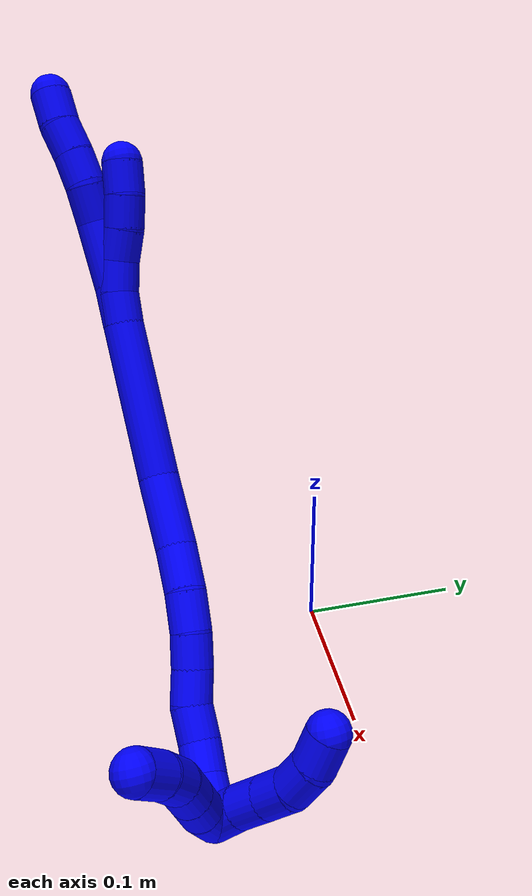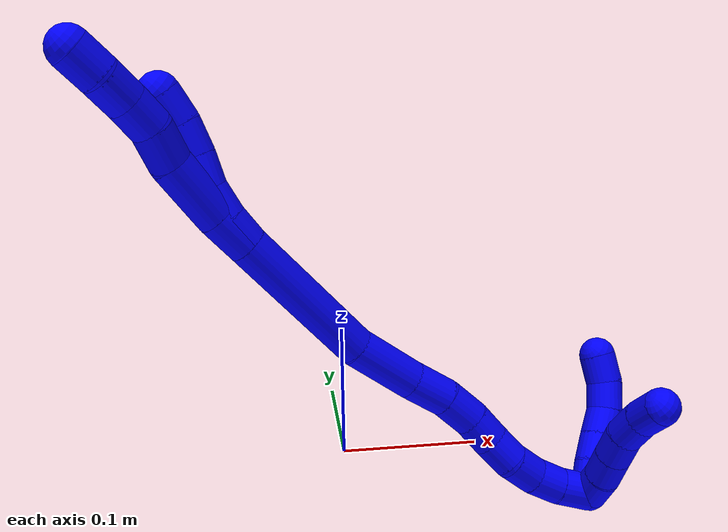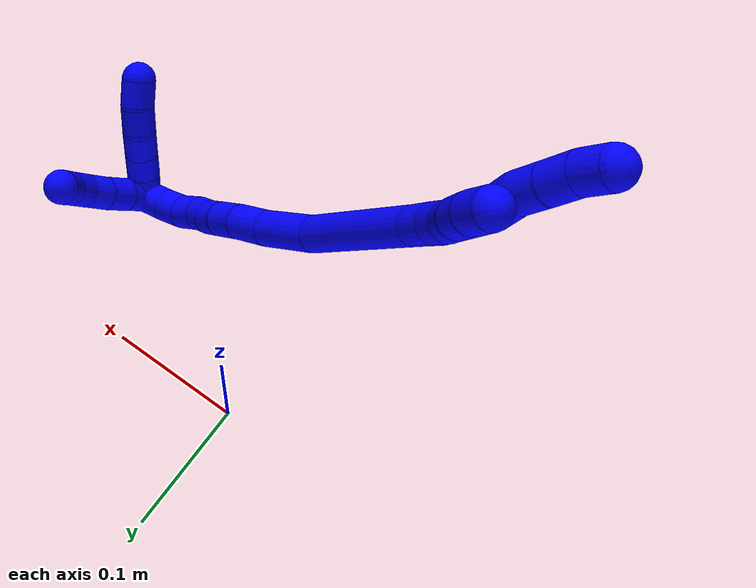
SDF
<sdf version="1.7">
 <world name="default">
  <plugin name="TubeGeneratorPlugin" filename="libtube_generator_plugin.so"/>
  <model name="photoneo_s_sensor">
   <static>1</static>
   <pose>0 0 2 1.57079 1.57079 3.14159</pose>
   <link name="link">
    <inertial><mass>0.1</mass></inertial>
    <sensor name="sensor" type="depth">
     <update_rate>30</update_rate>
     <camera>
      <horizontal_fov>1.22</horizontal_fov>
      <image><width>1920</width><height>1200</height><format>B8G8R8</format></image>
      <clip><near>0.1</near><far>4</far></clip>
      <depth_camera><output>points</output></depth_camera>
     </camera>
     <plugin name="camera_plugin" filename="libgazebo_ros_depth_camera.so">
      <baseline>0.2</baseline>
      <alwaysOn>1</alwaysOn>
      <updateRate>0.0</updateRate>
      <cameraName>camera_ir</cameraName>
      <imageTopicName>/camera/color/image_raw</imageTopicName>
      <cameraInfoTopicName>/camera/color/camera_info</cameraInfoTopicName>
      <depthImageTopicName>/camera/depth/image_raw</depthImageTopicName>
      <depthImageCameraInfoTopicName>/camera/depth/camera_info</depthImageCameraInfoTopicName>
      <pointCloudTopicName>/camera/depth/points</pointCloudTopicName>
      <frameName>fr_optical</frameName>
      <pointCloudCutoff>0.1</pointCloudCutoff>
      <pointCloudCutoffMax>2.0</pointCloudCutoffMax>
      <distortionK1>0</distortionK1>
      <distortionK2>0</distortionK2>
      <distortionK3>0</distortionK3>
      <distortionT1>0</distortionT1>
      <distortionT2>0</distortionT2>
      <CxPrime>0</CxPrime>
      <Cx>0</Cx>
      <Cy>0</Cy>
      <focalLength>0</focalLength>
      <hackBaseline>0</hackBaseline>
     </plugin>
    </sensor>
   </link>
  </model>
  <gravity>0 0 -9.8</gravity>
  <magnetic_field>6e-06 2.3e-05 -4.2e-05</magnetic_field>
  <atmosphere type="adiabatic"/>
  <physics name="default_physics" default="0" type="ode">
   <max_step_size>0.003</max_step_size>
   <real_time_factor>1</real_time_factor>
   <real_time_update_rate>1000</real_time_update_rate>
   <max_contacts>10000</max_contacts>
   <ode>
    <solver>
     <type>quick</type>
     <iters>100</iters>
     <sor>1.3</sor>
     <use_dynamic_moi_rescaling>0</use_dynamic_moi_rescaling>
    </solver>
    <constraints>
     <contact_max_correcting_vel>0</contact_max_correcting_vel>
     <contact_surface_layer>0.001</contact_surface_layer>
     <cfm>0</cfm>
     <erp>0.2</erp>
    </constraints>
   </ode>
  </physics>
  <scene><ambient>0.4 0.4 0.4 1</ambient><background>0.7 0.7 0.7 1</background><shadows>0</shadows></scene>
  <audio><device>default</device></audio>
  <spherical_coordinates>
   <surface_model>EARTH_WGS84</surface_model>
   <latitude_deg>0</latitude_deg>
   <longitude_deg>0</longitude_deg>
   <elevation>0</elevation>
   <heading_deg>0</heading_deg>
  </spherical_coordinates>
  <model name="bin">
   <static>1</static>
   <link name="bottom">
    <collision name="collision-bottom">
     <pose>0 0 -0.01 0 -0 0</pose>
     <geometry><box><size>0.8 0.6 0.02</size></box></geometry>
     <surface>
      <friction><ode><mu>100</mu><mu2>100</mu2></ode></friction>
      <contact><collide_bitmask>65535</collide_bitmask></contact>
     </surface>
    </collision>
   </link>
   <link name="west_wall">
    <collision name="collision-west_wall">
     <pose>-0.41 0 0.1 0 -0 0</pose>
     <geometry><box><size>0.02 0.6 0.2</size></box></geometry>
     <surface>
      <friction><ode><mu>100</mu><mu2>100</mu2></ode></friction>
      <contact><collide_bitmask>65535</collide_bitmask></contact>
     </surface>
    </collision>
   </link>
   <link name="east_wall">
    <collision name="collision-east_wall">
     <pose>0.41 0 0.1 0 -0 0</pose>
     <geometry><box><size>0.02 0.6 0.2</size></box></geometry>
     <surface>
      <friction><ode><mu>100</mu><mu2>100</mu2></ode></friction>
      <contact><collide_bitmask>65535</collide_bitmask></contact>
     </surface>
    </collision>
   </link>
   <link name="south_wall">
    <collision name="collision-south_wall">
     <pose>0 -0.31 0.1 0 -0 0</pose>
     <geometry><box><size>0.8 0.02 0.2</size></box></geometry>
     <surface>
      <friction><ode><mu>100</mu><mu2>100</mu2></ode></friction>
      <contact><collide_bitmask>65535</collide_bitmask></contact>
     </surface>
    </collision>
   </link>
   <link name="north_wall">
    <collision name="collision-north_wall">
     <pose>0 0.31 0.1 0 -0 0</pose>
     <geometry><box><size>0.8 0.02 0.2</size></box></geometry>
     <surface>
      <friction><ode><mu>100</mu><mu2>100</mu2></ode></friction>
      <contact><collide_bitmask>65535</collide_bitmask></contact>
     </surface>
    </collision>
   </link>
  </model>
  <model name="1">
   <static>0</static>
   <link name="1">
    <collision name="collision-cylinder-e_1_2_8">
     <pose>6.3e-05 6.7e-05 0.01241 -0.005424 0.005052 -1.4e-05</pose>
     <geometry><cylinder><radius>0.0125</radius><length>0.024821</length></cylinder></geometry>
     <surface>
      <friction><ode><mu>1.16</mu><mu2>1.16</mu2><slip1>0</slip1><slip2>0</slip2></ode></friction>
      <contact><ode><kp>1e+06</kp><kd>1</kd><max_vel>0</max_vel><min_depth>0.001</min_depth></ode></contact>
     </surface>
    </collision>
    <visual name="visual-cylinder-e_1_2_8">
     <pose>6.3e-05 6.7e-05 0.01241 -0.005424 0.005052 -1.4e-05</pose>
     <geometry><cylinder><radius>0.0125</radius><length>0.024821</length></cylinder></geometry>
     <material><ambient>0 0 1 1</ambient></material>
    </visual>
    <collision name="collision-cylinder-e_2_8_9">
     <pose>0.002994 -0.000309 0.04544 0.021503 0.138203 0.001488</pose>
     <geometry><cylinder><radius>0.0125</radius><length>0.041647</length></cylinder></geometry>
     <surface>
      <friction><ode><mu>1.16</mu><mu2>1.16</mu2><slip1>0</slip1><slip2>0</slip2></ode></friction>
      <contact><ode><kp>1e+06</kp><kd>1</kd><max_vel>0</max_vel><min_depth>0.001</min_depth></ode></contact>
     </surface>
    </collision>
    <visual name="visual-cylinder-e_2_8_9">
     <pose>0.002994 -0.000309 0.04544 0.021503 0.138203 0.001488</pose>
     <geometry><cylinder><radius>0.0125</radius><length>0.041647</length></cylinder></geometry>
     <material><ambient>0 0 1 1</ambient></material>
    </visual>
    <collision name="collision-cylinder-e_3_9_10">
     <pose>0.009972 -0.00055 0.076886 -0.018659 0.362683 -0.003421</pose>
     <geometry><cylinder><radius>0.0125</radius><length>0.023162</length></cylinder></geometry>
     <surface>
      <friction><ode><mu>1.16</mu><mu2>1.16</mu2><slip1>0</slip1><slip2>0</slip2></ode></friction>
      <contact><ode><kp>1e+06</kp><kd>1</kd><max_vel>0</max_vel><min_depth>0.001</min_depth></ode></contact>
     </surface>
    </collision>
    <visual name="visual-cylinder-e_3_9_10">
     <pose>0.009972 -0.00055 0.076886 -0.018659 0.362683 -0.003421</pose>
     <geometry><cylinder><radius>0.0125</radius><length>0.023162</length></cylinder></geometry>
     <material><ambient>0 0 1 1</ambient></material>
    </visual>
    <collision name="collision-cylinder-e_4_10_11">
     <pose>0.01548 -0.001464 0.097565 0.112745 0.140248 0.007927</pose>
     <geometry><cylinder><radius>0.0125</radius><length>0.020028</length></cylinder></geometry>
     <surface>
      <friction><ode><mu>1.16</mu><mu2>1.16</mu2><slip1>0</slip1><slip2>0</slip2></ode></friction>
      <contact><ode><kp>1e+06</kp><kd>1</kd><max_vel>0</max_vel><min_depth>0.001</min_depth></ode></contact>
     </surface>
    </collision>
    <visual name="visual-cylinder-e_4_10_11">
     <pose>0.01548 -0.001464 0.097565 0.112745 0.140248 0.007927</pose>
     <geometry><cylinder><radius>0.0125</radius><length>0.020028</length></cylinder></geometry>
     <material><ambient>0 0 1 1</ambient></material>
    </visual>
    <collision name="collision-cylinder-e_5_11_12">
     <pose>0.018241 -0.004465 0.117157 0.191242 0.136373 0.0131</pose>
     <geometry><cylinder><radius>0.0125</radius><length>0.020026</length></cylinder></geometry>
     <surface>
      <friction><ode><mu>1.16</mu><mu2>1.16</mu2><slip1>0</slip1><slip2>0</slip2></ode></friction>
      <contact><ode><kp>1e+06</kp><kd>1</kd><max_vel>0</max_vel><min_depth>0.001</min_depth></ode></contact>
     </surface>
    </collision>
    <visual name="visual-cylinder-e_5_11_12">
     <pose>0.018241 -0.004465 0.117157 0.191242 0.136373 0.0131</pose>
     <geometry><cylinder><radius>0.0125</radius><length>0.020026</length></cylinder></geometry>
     <material><ambient>0 0 1 1</ambient></material>
    </visual>
    <collision name="collision-cylinder-e_6_12_6">
     <pose>0.019813 -0.00694 0.137035 0.058054 0.020728 0.000602</pose>
     <geometry><cylinder><radius>0.0125</radius><length>0.020316</length></cylinder></geometry>
     <surface>
      <friction><ode><mu>1.16</mu><mu2>1.16</mu2><slip1>0</slip1><slip2>0</slip2></ode></friction>
      <contact><ode><kp>1e+06</kp><kd>1</kd><max_vel>0</max_vel><min_depth>0.001</min_depth></ode></contact>
     </surface>
    </collision>
    <visual name="visual-cylinder-e_6_12_6">
     <pose>0.019813 -0.00694 0.137035 0.058054 0.020728 0.000602</pose>
     <geometry><cylinder><radius>0.0125</radius><length>0.020316</length></cylinder></geometry>
     <material><ambient>0 0 1 1</ambient></material>
    </visual>
    <collision name="collision-cylinder-e_1_2_13">
     <pose>0.000754 0.00087 0.009934 -0.087345 0.075431 -0.003298</pose>
     <geometry><cylinder><radius>0.0125</radius><length>0.02</length></cylinder></geometry>
     <surface>
      <friction><ode><mu>1.16</mu><mu2>1.16</mu2><slip1>0</slip1><slip2>0</slip2></ode></friction>
      <contact><ode><kp>1e+06</kp><kd>1</kd><max_vel>0</max_vel><min_depth>0.001</min_depth></ode></contact>
     </surface>
    </collision>
    <visual name="visual-cylinder-e_1_2_13">
     <pose>0.000754 0.00087 0.009934 -0.087345 0.075431 -0.003298</pose>
     <geometry><cylinder><radius>0.0125</radius><length>0.02</length></cylinder></geometry>
     <material><ambient>0 0 1 1</ambient></material>
    </visual>
    <collision name="collision-cylinder-e_2_13_14">
     <pose>0.00269 0.004513 0.029402 -0.283093 0.118574 -0.016916</pose>
     <geometry><cylinder><radius>0.0125</radius><length>0.02</length></cylinder></geometry>
     <surface>
      <friction><ode><mu>1.16</mu><mu2>1.16</mu2><slip1>0</slip1><slip2>0</slip2></ode></friction>
      <contact><ode><kp>1e+06</kp><kd>1</kd><max_vel>0</max_vel><min_depth>0.001</min_depth></ode></contact>
     </surface>
    </collision>
    <visual name="visual-cylinder-e_2_13_14">
     <pose>0.00269 0.004513 0.029402 -0.283093 0.118574 -0.016916</pose>
     <geometry><cylinder><radius>0.0125</radius><length>0.02</length></cylinder></geometry>
     <material><ambient>0 0 1 1</ambient></material>
    </visual>
    <collision name="collision-cylinder-e_3_14_15">
     <pose>0.006567 0.011678 0.047507 -0.473422 0.272801 -0.066196</pose>
     <geometry><cylinder><radius>0.0125</radius><length>0.02</length></cylinder></geometry>
     <surface>
      <friction><ode><mu>1.16</mu><mu2>1.16</mu2><slip1>0</slip1><slip2>0</slip2></ode></friction>
      <contact><ode><kp>1e+06</kp><kd>1</kd><max_vel>0</max_vel><min_depth>0.001</min_depth></ode></contact>
     </surface>
    </collision>
    <visual name="visual-cylinder-e_3_14_15">
     <pose>0.006567 0.011678 0.047507 -0.473422 0.272801 -0.066196</pose>
     <geometry><cylinder><radius>0.0125</radius><length>0.02</length></cylinder></geometry>
     <material><ambient>0 0 1 1</ambient></material>
    </visual>
    <collision name="collision-cylinder-e_4_15_16">
     <pose>0.011709 0.019261 0.065234 -0.33548 0.247274 -0.04208</pose>
     <geometry><cylinder><radius>0.0125</radius><length>0.02</length></cylinder></geometry>
     <surface>
      <friction><ode><mu>1.16</mu><mu2>1.16</mu2><slip1>0</slip1><slip2>0</slip2></ode></friction>
      <contact><ode><kp>1e+06</kp><kd>1</kd><max_vel>0</max_vel><min_depth>0.001</min_depth></ode></contact>
     </surface>
    </collision>
    <visual name="visual-cylinder-e_4_15_16">
     <pose>0.011709 0.019261 0.065234 -0.33548 0.247274 -0.04208</pose>
     <geometry><cylinder><radius>0.0125</radius><length>0.02</length></cylinder></geometry>
     <material><ambient>0 0 1 1</ambient></material>
    </visual>
    <collision name="collision-cylinder-e_5_16_5">
     <pose>0.015632 0.024295 0.084106 -0.1874 0.148033 -0.013937</pose>
     <geometry><cylinder><radius>0.0125</radius><length>0.02</length></cylinder></geometry>
     <surface>
      <friction><ode><mu>1.16</mu><mu2>1.16</mu2><slip1>0</slip1><slip2>0</slip2></ode></friction>
      <contact><ode><kp>1e+06</kp><kd>1</kd><max_vel>0</max_vel><min_depth>0.001</min_depth></ode></contact>
     </surface>
    </collision>
    <visual name="visual-cylinder-e_5_16_5">
     <pose>0.015632 0.024295 0.084106 -0.1874 0.148033 -0.013937</pose>
     <geometry><cylinder><radius>0.0125</radius><length>0.02</length></cylinder></geometry>
     <material><ambient>0 0 1 1</ambient></material>
    </visual>
    <collision name="collision-cylinder-e_1_2_17">
     <pose>-0.000619 3e-05 -0.04869 -3.14098 -0.012716 3.04534</pose>
     <geometry><cylinder><radius>0.0125</radius><length>0.097389</length></cylinder></geometry>
     <surface>
      <friction><ode><mu>1.16</mu><mu2>1.16</mu2><slip1>0</slip1><slip2>0</slip2></ode></friction>
      <contact><ode><kp>1e+06</kp><kd>1</kd><max_vel>0</max_vel><min_depth>0.001</min_depth></ode></contact>
     </surface>
    </collision>
    <visual name="visual-cylinder-e_1_2_17">
     <pose>-0.000619 3e-05 -0.04869 -3.14098 -0.012716 3.04534</pose>
     <geometry><cylinder><radius>0.0125</radius><length>0.097389</length></cylinder></geometry>
     <material><ambient>0 0 1 1</ambient></material>
    </visual>
    <collision name="collision-cylinder-e_2_17_18">
     <pose>0.002619 0.001628 -0.119506 -3.07081 0.172198 -2.36299</pose>
     <geometry><cylinder><radius>0.0125</radius><length>0.045028</length></cylinder></geometry>
     <surface>
      <friction><ode><mu>1.16</mu><mu2>1.16</mu2><slip1>0</slip1><slip2>0</slip2></ode></friction>
      <contact><ode><kp>1e+06</kp><kd>1</kd><max_vel>0</max_vel><min_depth>0.001</min_depth></ode></contact>
     </surface>
    </collision>
    <visual name="visual-cylinder-e_2_17_18">
     <pose>0.002619 0.001628 -0.119506 -3.07081 0.172198 -2.36299</pose>
     <geometry><cylinder><radius>0.0125</radius><length>0.045028</length></cylinder></geometry>
     <material><ambient>0 0 1 1</ambient></material>
    </visual>
    <collision name="collision-cylinder-e_3_18_19">
     <pose>0.009917 0.003899 -0.154827 -3.08846 0.254643 -2.73228</pose>
     <geometry><cylinder><radius>0.0125</radius><length>0.027309</length></cylinder></geometry>
     <surface>
      <friction><ode><mu>1.16</mu><mu2>1.16</mu2><slip1>0</slip1><slip2>0</slip2></ode></friction>
      <contact><ode><kp>1e+06</kp><kd>1</kd><max_vel>0</max_vel><min_depth>0.001</min_depth></ode></contact>
     </surface>
    </collision>
    <visual name="visual-cylinder-e_3_18_19">
     <pose>0.009917 0.003899 -0.154827 -3.08846 0.254643 -2.73228</pose>
     <geometry><cylinder><radius>0.0125</radius><length>0.027309</length></cylinder></geometry>
     <material><ambient>0 0 1 1</ambient></material>
    </visual>
    <collision name="collision-cylinder-e_4_19_20">
     <pose>0.014765 0.003935 -0.179892 3.08557 0.118 2.25572</pose>
     <geometry><cylinder><radius>0.0125</radius><length>0.023942</length></cylinder></geometry>
     <surface>
      <friction><ode><mu>1.16</mu><mu2>1.16</mu2><slip1>0</slip1><slip2>0</slip2></ode></friction>
      <contact><ode><kp>1e+06</kp><kd>1</kd><max_vel>0</max_vel><min_depth>0.001</min_depth></ode></contact>
     </surface>
    </collision>
    <visual name="visual-cylinder-e_4_19_20">
     <pose>0.014765 0.003935 -0.179892 3.08557 0.118 2.25572</pose>
     <geometry><cylinder><radius>0.0125</radius><length>0.023942</length></cylinder></geometry>
     <material><ambient>0 0 1 1</ambient></material>
    </visual>
    <collision name="collision-cylinder-e_5_20_21">
     <pose>0.016476 0.001398 -0.201871 2.95855 0.029272 0.316306</pose>
     <geometry><cylinder><radius>0.0125</radius><length>0.020572</length></cylinder></geometry>
     <surface>
      <friction><ode><mu>1.16</mu><mu2>1.16</mu2><slip1>0</slip1><slip2>0</slip2></ode></friction>
      <contact><ode><kp>1e+06</kp><kd>1</kd><max_vel>0</max_vel><min_depth>0.001</min_depth></ode></contact>
     </surface>
    </collision>
    <visual name="visual-cylinder-e_5_20_21">
     <pose>0.016476 0.001398 -0.201871 2.95855 0.029272 0.316306</pose>
     <geometry><cylinder><radius>0.0125</radius><length>0.020572</length></cylinder></geometry>
     <material><ambient>0 0 1 1</ambient></material>
    </visual>
    <collision name="collision-cylinder-e_6_21_22">
     <pose>0.017927 -0.002882 -0.222026 2.90626 0.110903 0.877997</pose>
     <geometry><cylinder><radius>0.0125</radius><length>0.020787</length></cylinder></geometry>
     <surface>
      <friction><ode><mu>1.16</mu><mu2>1.16</mu2><slip1>0</slip1><slip2>0</slip2></ode></friction>
      <contact><ode><kp>1e+06</kp><kd>1</kd><max_vel>0</max_vel><min_depth>0.001</min_depth></ode></contact>
     </surface>
    </collision>
    <visual name="visual-cylinder-e_6_21_22">
     <pose>0.017927 -0.002882 -0.222026 2.90626 0.110903 0.877997</pose>
     <geometry><cylinder><radius>0.0125</radius><length>0.020787</length></cylinder></geometry>
     <material><ambient>0 0 1 1</ambient></material>
    </visual>
    <collision name="collision-cylinder-e_7_22_23">
     <pose>0.020518 -0.004864 -0.24258 -3.101 0.136102 -2.56262</pose>
     <geometry><cylinder><radius>0.0125</radius><length>0.021233</length></cylinder></geometry>
     <surface>
      <friction><ode><mu>1.16</mu><mu2>1.16</mu2><slip1>0</slip1><slip2>0</slip2></ode></friction>
      <contact><ode><kp>1e+06</kp><kd>1</kd><max_vel>0</max_vel><min_depth>0.001</min_depth></ode></contact>
     </surface>
    </collision>
    <visual name="visual-cylinder-e_7_22_23">
     <pose>0.020518 -0.004864 -0.24258 -3.101 0.136102 -2.56262</pose>
     <geometry><cylinder><radius>0.0125</radius><length>0.021233</length></cylinder></geometry>
     <material><ambient>0 0 1 1</ambient></material>
    </visual>
    <collision name="collision-cylinder-e_8_23_24">
     <pose>0.025498 -0.003989 -0.262543 -3.09428 0.357922 -2.88145</pose>
     <geometry><cylinder><radius>0.0125</radius><length>0.020208</length></cylinder></geometry>
     <surface>
      <friction><ode><mu>1.16</mu><mu2>1.16</mu2><slip1>0</slip1><slip2>0</slip2></ode></friction>
      <contact><ode><kp>1e+06</kp><kd>1</kd><max_vel>0</max_vel><min_depth>0.001</min_depth></ode></contact>
     </surface>
    </collision>
    <visual name="visual-cylinder-e_8_23_24">
     <pose>0.025498 -0.003989 -0.262543 -3.09428 0.357922 -2.88145</pose>
     <geometry><cylinder><radius>0.0125</radius><length>0.020208</length></cylinder></geometry>
     <material><ambient>0 0 1 1</ambient></material>
    </visual>
    <collision name="collision-cylinder-e_9_24_1">
     <pose>0.034731 -0.001998 -0.282177 -2.99111 0.505042 -2.5731</pose>
     <geometry><cylinder><radius>0.0125</radius><length>0.023532</length></cylinder></geometry>
     <surface>
      <friction><ode><mu>1.16</mu><mu2>1.16</mu2><slip1>0</slip1><slip2>0</slip2></ode></friction>
      <contact><ode><kp>1e+06</kp><kd>1</kd><max_vel>0</max_vel><min_depth>0.001</min_depth></ode></contact>
     </surface>
    </collision>
    <visual name="visual-cylinder-e_9_24_1">
     <pose>0.034731 -0.001998 -0.282177 -2.99111 0.505042 -2.5731</pose>
     <geometry><cylinder><radius>0.0125</radius><length>0.023532</length></cylinder></geometry>
     <material><ambient>0 0 1 1</ambient></material>
    </visual>
    <collision name="collision-cylinder-e_1_1_25">
     <pose>0.049024 -0.001174 -0.287306 0.141511 1.03535 0.080678</pose>
     <geometry><cylinder><radius>0.0125</radius><length>0.02</length></cylinder></geometry>
     <surface>
      <friction><ode><mu>1.16</mu><mu2>1.16</mu2><slip1>0</slip1><slip2>0</slip2></ode></friction>
      <contact><ode><kp>1e+06</kp><kd>1</kd><max_vel>0</max_vel><min_depth>0.001</min_depth></ode></contact>
     </surface>
    </collision>
    <visual name="visual-cylinder-e_1_1_25">
     <pose>0.049024 -0.001174 -0.287306 0.141511 1.03535 0.080678</pose>
     <geometry><cylinder><radius>0.0125</radius><length>0.02</length></cylinder></geometry>
     <material><ambient>0 0 1 1</ambient></material>
    </visual>
    <collision name="collision-cylinder-e_2_25_26">
     <pose>0.065759 -0.001451 -0.276455 -0.076185 0.94996 -0.039192</pose>
     <geometry><cylinder><radius>0.0125</radius><length>0.02</length></cylinder></geometry>
     <surface>
      <friction><ode><mu>1.16</mu><mu2>1.16</mu2><slip1>0</slip1><slip2>0</slip2></ode></friction>
      <contact><ode><kp>1e+06</kp><kd>1</kd><max_vel>0</max_vel><min_depth>0.001</min_depth></ode></contact>
     </surface>
    </collision>
    <visual name="visual-cylinder-e_2_25_26">
     <pose>0.065759 -0.001451 -0.276455 -0.076185 0.94996 -0.039192</pose>
     <geometry><cylinder><radius>0.0125</radius><length>0.02</length></cylinder></geometry>
     <material><ambient>0 0 1 1</ambient></material>
    </visual>
    <collision name="collision-cylinder-e_3_26_27">
     <pose>0.082071 -0.000699 -0.264909 -0.053707 0.957662 -0.027885</pose>
     <geometry><cylinder><radius>0.0125</radius><length>0.02</length></cylinder></geometry>
     <surface>
      <friction><ode><mu>1.16</mu><mu2>1.16</mu2><slip1>0</slip1><slip2>0</slip2></ode></friction>
      <contact><ode><kp>1e+06</kp><kd>1</kd><max_vel>0</max_vel><min_depth>0.001</min_depth></ode></contact>
     </surface>
    </collision>
    <visual name="visual-cylinder-e_3_26_27">
     <pose>0.082071 -0.000699 -0.264909 -0.053707 0.957662 -0.027885</pose>
     <geometry><cylinder><radius>0.0125</radius><length>0.02</length></cylinder></geometry>
     <material><ambient>0 0 1 1</ambient></material>
    </visual>
    <collision name="collision-cylinder-e_4_27_28">
     <pose>0.099269 -0.001576 -0.25501 0.278148 1.12427 0.175898</pose>
     <geometry><cylinder><radius>0.0125</radius><length>0.02</length></cylinder></geometry>
     <surface>
      <friction><ode><mu>1.16</mu><mu2>1.16</mu2><slip1>0</slip1><slip2>0</slip2></ode></friction>
      <contact><ode><kp>1e+06</kp><kd>1</kd><max_vel>0</max_vel><min_depth>0.001</min_depth></ode></contact>
     </surface>
    </collision>
    <visual name="visual-cylinder-e_4_27_28">
     <pose>0.099269 -0.001576 -0.25501 0.278148 1.12427 0.175898</pose>
     <geometry><cylinder><radius>0.0125</radius><length>0.02</length></cylinder></geometry>
     <material><ambient>0 0 1 1</ambient></material>
    </visual>
    <collision name="collision-cylinder-e_5_28_4">
     <pose>0.117141 -0.005835 -0.247367 0.721998 1.08706 0.448575</pose>
     <geometry><cylinder><radius>0.0125</radius><length>0.02</length></cylinder></geometry>
     <surface>
      <friction><ode><mu>1.16</mu><mu2>1.16</mu2><slip1>0</slip1><slip2>0</slip2></ode></friction>
      <contact><ode><kp>1e+06</kp><kd>1</kd><max_vel>0</max_vel><min_depth>0.001</min_depth></ode></contact>
     </surface>
    </collision>
    <visual name="visual-cylinder-e_5_28_4">
     <pose>0.117141 -0.005835 -0.247367 0.721998 1.08706 0.448575</pose>
     <geometry><cylinder><radius>0.0125</radius><length>0.02</length></cylinder></geometry>
     <material><ambient>0 0 1 1</ambient></material>
    </visual>
    <collision name="collision-cylinder-e_1_1_29">
     <pose>0.04439 0.008269 -0.289498 -1.25396 0.407807 -0.297407</pose>
     <geometry><cylinder><radius>0.0125</radius><length>0.02</length></cylinder></geometry>
     <surface>
      <friction><ode><mu>1.16</mu><mu2>1.16</mu2><slip1>0</slip1><slip2>0</slip2></ode></friction>
      <contact><ode><kp>1e+06</kp><kd>1</kd><max_vel>0</max_vel><min_depth>0.001</min_depth></ode></contact>
     </surface>
    </collision>
    <visual name="visual-cylinder-e_1_1_29">
     <pose>0.04439 0.008269 -0.289498 -1.25396 0.407807 -0.297407</pose>
     <geometry><cylinder><radius>0.0125</radius><length>0.02</length></cylinder></geometry>
     <material><ambient>0 0 1 1</ambient></material>
    </visual>
    <collision name="collision-cylinder-e_2_29_30">
     <pose>0.052668 0.02578 -0.284596 -1.34253 0.445895 -0.356349</pose>
     <geometry><cylinder><radius>0.0125</radius><length>0.02</length></cylinder></geometry>
     <surface>
      <friction><ode><mu>1.16</mu><mu2>1.16</mu2><slip1>0</slip1><slip2>0</slip2></ode></friction>
      <contact><ode><kp>1e+06</kp><kd>1</kd><max_vel>0</max_vel><min_depth>0.001</min_depth></ode></contact>
     </surface>
    </collision>
    <visual name="visual-cylinder-e_2_29_30">
     <pose>0.052668 0.02578 -0.284596 -1.34253 0.445895 -0.356349</pose>
     <geometry><cylinder><radius>0.0125</radius><length>0.02</length></cylinder></geometry>
     <material><ambient>0 0 1 1</ambient></material>
    </visual>
    <collision name="collision-cylinder-e_3_30_31">
     <pose>0.061792 0.043057 -0.280364 -1.31835 0.501902 -0.392135</pose>
     <geometry><cylinder><radius>0.0125</radius><length>0.02</length></cylinder></geometry>
     <surface>
      <friction><ode><mu>1.16</mu><mu2>1.16</mu2><slip1>0</slip1><slip2>0</slip2></ode></friction>
      <contact><ode><kp>1e+06</kp><kd>1</kd><max_vel>0</max_vel><min_depth>0.001</min_depth></ode></contact>
     </surface>
    </collision>
    <visual name="visual-cylinder-e_3_30_31">
     <pose>0.061792 0.043057 -0.280364 -1.31835 0.501902 -0.392135</pose>
     <geometry><cylinder><radius>0.0125</radius><length>0.02</length></cylinder></geometry>
     <material><ambient>0 0 1 1</ambient></material>
    </visual>
    <collision name="collision-cylinder-e_4_31_32">
     <pose>0.070495 0.059158 -0.272987 -0.972544 0.399741 -0.213353</pose>
     <geometry><cylinder><radius>0.0125</radius><length>0.02</length></cylinder></geometry>
     <surface>
      <friction><ode><mu>1.16</mu><mu2>1.16</mu2><slip1>0</slip1><slip2>0</slip2></ode></friction>
      <contact><ode><kp>1e+06</kp><kd>1</kd><max_vel>0</max_vel><min_depth>0.001</min_depth></ode></contact>
     </surface>
    </collision>
    <visual name="visual-cylinder-e_4_31_32">
     <pose>0.070495 0.059158 -0.272987 -0.972544 0.399741 -0.213353</pose>
     <geometry><cylinder><radius>0.0125</radius><length>0.02</length></cylinder></geometry>
     <material><ambient>0 0 1 1</ambient></material>
    </visual>
    <collision name="collision-cylinder-e_5_32_3">
     <pose>0.076922 0.072865 -0.260288 -0.681802 0.256333 -0.091372</pose>
     <geometry><cylinder><radius>0.0125</radius><length>0.02</length></cylinder></geometry>
     <surface>
      <friction><ode><mu>1.16</mu><mu2>1.16</mu2><slip1>0</slip1><slip2>0</slip2></ode></friction>
      <contact><ode><kp>1e+06</kp><kd>1</kd><max_vel>0</max_vel><min_depth>0.001</min_depth></ode></contact>
     </surface>
    </collision>
    <visual name="visual-cylinder-e_5_32_3">
     <pose>0.076922 0.072865 -0.260288 -0.681802 0.256333 -0.091372</pose>
     <geometry><cylinder><radius>0.0125</radius><length>0.02</length></cylinder></geometry>
     <material><ambient>0 0 1 1</ambient></material>
    </visual>
    <collision name="collision-sphere-3">
     <pose>0.079457 0.078961 -0.252777 0 -0 0</pose>
     <geometry><sphere><radius>0.0125</radius></sphere></geometry>
     <surface>
      <friction><ode><mu>1.16</mu><mu2>1.16</mu2><slip1>0</slip1><slip2>0</slip2></ode></friction>
      <contact><ode><kp>1e+06</kp><kd>1</kd><max_vel>0</max_vel><min_depth>0.001</min_depth></ode></contact>
     </surface>
    </collision>
    <visual name="visual-sphere-3">
     <pose>0.079457 0.078961 -0.252777 0 -0 0</pose>
     <geometry><sphere><radius>0.0125</radius></sphere></geometry>
     <material><ambient>0 0 1 1</ambient></material>
    </visual>
    <collision name="collision-sphere-32">
     <pose>0.074387 0.066769 -0.267799 0 -0 0</pose>
     <geometry><sphere><radius>0.0125</radius></sphere></geometry>
     <surface>
      <friction><ode><mu>1.16</mu><mu2>1.16</mu2><slip1>0</slip1><slip2>0</slip2></ode></friction>
      <contact><ode><kp>1e+06</kp><kd>1</kd><max_vel>0</max_vel><min_depth>0.001</min_depth></ode></contact>
     </surface>
    </collision>
    <visual name="visual-sphere-32">
     <pose>0.074387 0.066769 -0.267799 0 -0 0</pose>
     <geometry><sphere><radius>0.0125</radius></sphere></geometry>
     <material><ambient>0 0 1 1</ambient></material>
    </visual>
    <collision name="collision-sphere-31">
     <pose>0.066603 0.051546 -0.278175 0 -0 0</pose>
     <geometry><sphere><radius>0.0125</radius></sphere></geometry>
     <surface>
      <friction><ode><mu>1.16</mu><mu2>1.16</mu2><slip1>0</slip1><slip2>0</slip2></ode></friction>
      <contact><ode><kp>1e+06</kp><kd>1</kd><max_vel>0</max_vel><min_depth>0.001</min_depth></ode></contact>
     </surface>
    </collision>
    <visual name="visual-sphere-31">
     <pose>0.066603 0.051546 -0.278175 0 -0 0</pose>
     <geometry><sphere><radius>0.0125</radius></sphere></geometry>
     <material><ambient>0 0 1 1</ambient></material>
    </visual>
    <collision name="collision-sphere-30">
     <pose>0.056981 0.034568 -0.282554 0 -0 0</pose>
     <geometry><sphere><radius>0.0125</radius></sphere></geometry>
     <surface>
      <friction><ode><mu>1.16</mu><mu2>1.16</mu2><slip1>0</slip1><slip2>0</slip2></ode></friction>
      <contact><ode><kp>1e+06</kp><kd>1</kd><max_vel>0</max_vel><min_depth>0.001</min_depth></ode></contact>
     </surface>
    </collision>
    <visual name="visual-sphere-30">
     <pose>0.056981 0.034568 -0.282554 0 -0 0</pose>
     <geometry><sphere><radius>0.0125</radius></sphere></geometry>
     <material><ambient>0 0 1 1</ambient></material>
    </visual>
    <collision name="collision-sphere-29">
     <pose>0.048356 0.016992 -0.286637 0 -0 0</pose>
     <geometry><sphere><radius>0.0125</radius></sphere></geometry>
     <surface>
      <friction><ode><mu>1.16</mu><mu2>1.16</mu2><slip1>0</slip1><slip2>0</slip2></ode></friction>
      <contact><ode><kp>1e+06</kp><kd>1</kd><max_vel>0</max_vel><min_depth>0.001</min_depth></ode></contact>
     </surface>
    </collision>
    <visual name="visual-sphere-29">
     <pose>0.048356 0.016992 -0.286637 0 -0 0</pose>
     <geometry><sphere><radius>0.0125</radius></sphere></geometry>
     <material><ambient>0 0 1 1</ambient></material>
    </visual>
    <collision name="collision-sphere-4">
     <pose>0.125994 -0.008909 -0.243877 0 -0 0</pose>
     <geometry><sphere><radius>0.0125</radius></sphere></geometry>
     <surface>
      <friction><ode><mu>1.16</mu><mu2>1.16</mu2><slip1>0</slip1><slip2>0</slip2></ode></friction>
      <contact><ode><kp>1e+06</kp><kd>1</kd><max_vel>0</max_vel><min_depth>0.001</min_depth></ode></contact>
     </surface>
    </collision>
    <visual name="visual-sphere-4">
     <pose>0.125994 -0.008909 -0.243877 0 -0 0</pose>
     <geometry><sphere><radius>0.0125</radius></sphere></geometry>
     <material><ambient>0 0 1 1</ambient></material>
    </visual>
    <collision name="collision-sphere-28">
     <pose>0.108289 -0.002762 -0.250858 0 -0 0</pose>
     <geometry><sphere><radius>0.0125</radius></sphere></geometry>
     <surface>
      <friction><ode><mu>1.16</mu><mu2>1.16</mu2><slip1>0</slip1><slip2>0</slip2></ode></friction>
      <contact><ode><kp>1e+06</kp><kd>1</kd><max_vel>0</max_vel><min_depth>0.001</min_depth></ode></contact>
     </surface>
    </collision>
    <visual name="visual-sphere-28">
     <pose>0.108289 -0.002762 -0.250858 0 -0 0</pose>
     <geometry><sphere><radius>0.0125</radius></sphere></geometry>
     <material><ambient>0 0 1 1</ambient></material>
    </visual>
    <collision name="collision-sphere-27">
     <pose>0.090249 -0.00039 -0.259163 0 -0 0</pose>
     <geometry><sphere><radius>0.0125</radius></sphere></geometry>
     <surface>
      <friction><ode><mu>1.16</mu><mu2>1.16</mu2><slip1>0</slip1><slip2>0</slip2></ode></friction>
      <contact><ode><kp>1e+06</kp><kd>1</kd><max_vel>0</max_vel><min_depth>0.001</min_depth></ode></contact>
     </surface>
    </collision>
    <visual name="visual-sphere-27">
     <pose>0.090249 -0.00039 -0.259163 0 -0 0</pose>
     <geometry><sphere><radius>0.0125</radius></sphere></geometry>
     <material><ambient>0 0 1 1</ambient></material>
    </visual>
    <collision name="collision-sphere-26">
     <pose>0.073892 -0.001008 -0.270655 0 -0 0</pose>
     <geometry><sphere><radius>0.0125</radius></sphere></geometry>
     <surface>
      <friction><ode><mu>1.16</mu><mu2>1.16</mu2><slip1>0</slip1><slip2>0</slip2></ode></friction>
      <contact><ode><kp>1e+06</kp><kd>1</kd><max_vel>0</max_vel><min_depth>0.001</min_depth></ode></contact>
     </surface>
    </collision>
    <visual name="visual-sphere-26">
     <pose>0.073892 -0.001008 -0.270655 0 -0 0</pose>
     <geometry><sphere><radius>0.0125</radius></sphere></geometry>
     <material><ambient>0 0 1 1</ambient></material>
    </visual>
    <collision name="collision-sphere-25">
     <pose>0.057625 -0.001893 -0.282255 0 -0 0</pose>
     <geometry><sphere><radius>0.0125</radius></sphere></geometry>
     <surface>
      <friction><ode><mu>1.16</mu><mu2>1.16</mu2><slip1>0</slip1><slip2>0</slip2></ode></friction>
      <contact><ode><kp>1e+06</kp><kd>1</kd><max_vel>0</max_vel><min_depth>0.001</min_depth></ode></contact>
     </surface>
    </collision>
    <visual name="visual-sphere-25">
     <pose>0.057625 -0.001893 -0.282255 0 -0 0</pose>
     <geometry><sphere><radius>0.0125</radius></sphere></geometry>
     <material><ambient>0 0 1 1</ambient></material>
    </visual>
    <collision name="collision-sphere-1">
     <pose>0.040424 -0.000454 -0.292358 0 -0 0</pose>
     <geometry><sphere><radius>0.0125</radius></sphere></geometry>
     <surface>
      <friction><ode><mu>1.16</mu><mu2>1.16</mu2><slip1>0</slip1><slip2>0</slip2></ode></friction>
      <contact><ode><kp>1e+06</kp><kd>1</kd><max_vel>0</max_vel><min_depth>0.001</min_depth></ode></contact>
     </surface>
    </collision>
    <visual name="visual-sphere-1">
     <pose>0.040424 -0.000454 -0.292358 0 -0 0</pose>
     <geometry><sphere><radius>0.0125</radius></sphere></geometry>
     <material><ambient>0 0 1 1</ambient></material>
    </visual>
    <collision name="collision-sphere-24">
     <pose>0.029038 -0.003542 -0.271996 0 -0 0</pose>
     <geometry><sphere><radius>0.0125</radius></sphere></geometry>
     <surface>
      <friction><ode><mu>1.16</mu><mu2>1.16</mu2><slip1>0</slip1><slip2>0</slip2></ode></friction>
      <contact><ode><kp>1e+06</kp><kd>1</kd><max_vel>0</max_vel><min_depth>0.001</min_depth></ode></contact>
     </surface>
    </collision>
    <visual name="visual-sphere-24">
     <pose>0.029038 -0.003542 -0.271996 0 -0 0</pose>
     <geometry><sphere><radius>0.0125</radius></sphere></geometry>
     <material><ambient>0 0 1 1</ambient></material>
    </visual>
    <collision name="collision-sphere-23">
     <pose>0.021958 -0.004437 -0.25309 0 -0 0</pose>
     <geometry><sphere><radius>0.0125</radius></sphere></geometry>
     <surface>
      <friction><ode><mu>1.16</mu><mu2>1.16</mu2><slip1>0</slip1><slip2>0</slip2></ode></friction>
      <contact><ode><kp>1e+06</kp><kd>1</kd><max_vel>0</max_vel><min_depth>0.001</min_depth></ode></contact>
     </surface>
    </collision>
    <visual name="visual-sphere-23">
     <pose>0.021958 -0.004437 -0.25309 0 -0 0</pose>
     <geometry><sphere><radius>0.0125</radius></sphere></geometry>
     <material><ambient>0 0 1 1</ambient></material>
    </visual>
    <collision name="collision-sphere-22">
     <pose>0.019078 -0.005291 -0.232071 0 -0 0</pose>
     <geometry><sphere><radius>0.0125</radius></sphere></geometry>
     <surface>
      <friction><ode><mu>1.16</mu><mu2>1.16</mu2><slip1>0</slip1><slip2>0</slip2></ode></friction>
      <contact><ode><kp>1e+06</kp><kd>1</kd><max_vel>0</max_vel><min_depth>0.001</min_depth></ode></contact>
     </surface>
    </collision>
    <visual name="visual-sphere-22">
     <pose>0.019078 -0.005291 -0.232071 0 -0 0</pose>
     <geometry><sphere><radius>0.0125</radius></sphere></geometry>
     <material><ambient>0 0 1 1</ambient></material>
    </visual>
    <collision name="collision-sphere-21">
     <pose>0.016777 -0.000474 -0.211981 0 -0 0</pose>
     <geometry><sphere><radius>0.0125</radius></sphere></geometry>
     <surface>
      <friction><ode><mu>1.16</mu><mu2>1.16</mu2><slip1>0</slip1><slip2>0</slip2></ode></friction>
      <contact><ode><kp>1e+06</kp><kd>1</kd><max_vel>0</max_vel><min_depth>0.001</min_depth></ode></contact>
     </surface>
    </collision>
    <visual name="visual-sphere-21">
     <pose>0.016777 -0.000474 -0.211981 0 -0 0</pose>
     <geometry><sphere><radius>0.0125</radius></sphere></geometry>
     <material><ambient>0 0 1 1</ambient></material>
    </visual>
    <collision name="collision-sphere-12">
     <pose>0.019603 -0.006351 0.126896 0 -0 0</pose>
     <geometry><sphere><radius>0.0125</radius></sphere></geometry>
     <surface>
      <friction><ode><mu>1.16</mu><mu2>1.16</mu2><slip1>0</slip1><slip2>0</slip2></ode></friction>
      <contact><ode><kp>1e+06</kp><kd>1</kd><max_vel>0</max_vel><min_depth>0.001</min_depth></ode></contact>
     </surface>
    </collision>
    <visual name="visual-sphere-12">
     <pose>0.019603 -0.006351 0.126896 0 -0 0</pose>
     <geometry><sphere><radius>0.0125</radius></sphere></geometry>
     <material><ambient>0 0 1 1</ambient></material>
    </visual>
    <collision name="collision-sphere-11">
     <pose>0.01688 -0.002579 0.107417 0 -0 0</pose>
     <geometry><sphere><radius>0.0125</radius></sphere></geometry>
     <surface>
      <friction><ode><mu>1.16</mu><mu2>1.16</mu2><slip1>0</slip1><slip2>0</slip2></ode></friction>
      <contact><ode><kp>1e+06</kp><kd>1</kd><max_vel>0</max_vel><min_depth>0.001</min_depth></ode></contact>
     </surface>
    </collision>
    <visual name="visual-sphere-11">
     <pose>0.01688 -0.002579 0.107417 0 -0 0</pose>
     <geometry><sphere><radius>0.0125</radius></sphere></geometry>
     <material><ambient>0 0 1 1</ambient></material>
    </visual>
    <collision name="collision-sphere-10">
     <pose>0.01408 -0.000348 0.087712 0 -0 0</pose>
     <geometry><sphere><radius>0.0125</radius></sphere></geometry>
     <surface>
      <friction><ode><mu>1.16</mu><mu2>1.16</mu2><slip1>0</slip1><slip2>0</slip2></ode></friction>
      <contact><ode><kp>1e+06</kp><kd>1</kd><max_vel>0</max_vel><min_depth>0.001</min_depth></ode></contact>
     </surface>
    </collision>
    <visual name="visual-sphere-10">
     <pose>0.01408 -0.000348 0.087712 0 -0 0</pose>
     <geometry><sphere><radius>0.0125</radius></sphere></geometry>
     <material><ambient>0 0 1 1</ambient></material>
    </visual>
    <collision name="collision-sphere-9">
     <pose>0.005863 -0.000752 0.06606 0 -0 0</pose>
     <geometry><sphere><radius>0.0125</radius></sphere></geometry>
     <surface>
      <friction><ode><mu>1.16</mu><mu2>1.16</mu2><slip1>0</slip1><slip2>0</slip2></ode></friction>
      <contact><ode><kp>1e+06</kp><kd>1</kd><max_vel>0</max_vel><min_depth>0.001</min_depth></ode></contact>
     </surface>
    </collision>
    <visual name="visual-sphere-9">
     <pose>0.005863 -0.000752 0.06606 0 -0 0</pose>
     <geometry><sphere><radius>0.0125</radius></sphere></geometry>
     <material><ambient>0 0 1 1</ambient></material>
    </visual>
    <collision name="collision-sphere-2">
     <geometry><sphere><radius>0.0125</radius></sphere></geometry>
     <surface>
      <friction><ode><mu>1.16</mu><mu2>1.16</mu2><slip1>0</slip1><slip2>0</slip2></ode></friction>
      <contact><ode><kp>1e+06</kp><kd>1</kd><max_vel>0</max_vel><min_depth>0.001</min_depth></ode></contact>
     </surface>
    </collision>
    <visual name="visual-sphere-2">
     <geometry><sphere><radius>0.0125</radius></sphere></geometry>
     <material><ambient>0 0 1 1</ambient></material>
    </visual>
    <collision name="collision-sphere-19">
     <pose>0.013356 0.004601 -0.168023 0 -0 0</pose>
     <geometry><sphere><radius>0.0125</radius></sphere></geometry>
     <surface>
      <friction><ode><mu>1.16</mu><mu2>1.16</mu2><slip1>0</slip1><slip2>0</slip2></ode></friction>
      <contact><ode><kp>1e+06</kp><kd>1</kd><max_vel>0</max_vel><min_depth>0.001</min_depth></ode></contact>
     </surface>
    </collision>
    <visual name="visual-sphere-19">
     <pose>0.013356 0.004601 -0.168023 0 -0 0</pose>
     <geometry><sphere><radius>0.0125</radius></sphere></geometry>
     <material><ambient>0 0 1 1</ambient></material>
    </visual>
    <collision name="collision-sphere-8">
     <pose>0.000125 0.000135 0.02482 0 -0 0</pose>
     <geometry><sphere><radius>0.0125</radius></sphere></geometry>
     <surface>
      <friction><ode><mu>1.16</mu><mu2>1.16</mu2><slip1>0</slip1><slip2>0</slip2></ode></friction>
      <contact><ode><kp>1e+06</kp><kd>1</kd><max_vel>0</max_vel><min_depth>0.001</min_depth></ode></contact>
     </surface>
    </collision>
    <visual name="visual-sphere-8">
     <pose>0.000125 0.000135 0.02482 0 -0 0</pose>
     <geometry><sphere><radius>0.0125</radius></sphere></geometry>
     <material><ambient>0 0 1 1</ambient></material>
    </visual>
    <collision name="collision-sphere-6">
     <pose>0.020024 -0.007529 0.147173 0 -0 0</pose>
     <geometry><sphere><radius>0.0125</radius></sphere></geometry>
     <surface>
      <friction><ode><mu>1.16</mu><mu2>1.16</mu2><slip1>0</slip1><slip2>0</slip2></ode></friction>
      <contact><ode><kp>1e+06</kp><kd>1</kd><max_vel>0</max_vel><min_depth>0.001</min_depth></ode></contact>
     </surface>
    </collision>
    <visual name="visual-sphere-6">
     <pose>0.020024 -0.007529 0.147173 0 -0 0</pose>
     <geometry><sphere><radius>0.0125</radius></sphere></geometry>
     <material><ambient>0 0 1 1</ambient></material>
    </visual>
    <collision name="collision-sphere-13">
     <pose>0.001507 0.00174 0.019867 0 -0 0</pose>
     <geometry><sphere><radius>0.0125</radius></sphere></geometry>
     <surface>
      <friction><ode><mu>1.16</mu><mu2>1.16</mu2><slip1>0</slip1><slip2>0</slip2></ode></friction>
      <contact><ode><kp>1e+06</kp><kd>1</kd><max_vel>0</max_vel><min_depth>0.001</min_depth></ode></contact>
     </surface>
    </collision>
    <visual name="visual-sphere-13">
     <pose>0.001507 0.00174 0.019867 0 -0 0</pose>
     <geometry><sphere><radius>0.0125</radius></sphere></geometry>
     <material><ambient>0 0 1 1</ambient></material>
    </visual>
    <collision name="collision-sphere-14">
     <pose>0.003873 0.007287 0.038936 0 -0 0</pose>
     <geometry><sphere><radius>0.0125</radius></sphere></geometry>
     <surface>
      <friction><ode><mu>1.16</mu><mu2>1.16</mu2><slip1>0</slip1><slip2>0</slip2></ode></friction>
      <contact><ode><kp>1e+06</kp><kd>1</kd><max_vel>0</max_vel><min_depth>0.001</min_depth></ode></contact>
     </surface>
    </collision>
    <visual name="visual-sphere-14">
     <pose>0.003873 0.007287 0.038936 0 -0 0</pose>
     <geometry><sphere><radius>0.0125</radius></sphere></geometry>
     <material><ambient>0 0 1 1</ambient></material>
    </visual>
    <collision name="collision-sphere-15">
     <pose>0.009262 0.016069 0.056078 0 -0 0</pose>
     <geometry><sphere><radius>0.0125</radius></sphere></geometry>
     <surface>
      <friction><ode><mu>1.16</mu><mu2>1.16</mu2><slip1>0</slip1><slip2>0</slip2></ode></friction>
      <contact><ode><kp>1e+06</kp><kd>1</kd><max_vel>0</max_vel><min_depth>0.001</min_depth></ode></contact>
     </surface>
    </collision>
    <visual name="visual-sphere-15">
     <pose>0.009262 0.016069 0.056078 0 -0 0</pose>
     <geometry><sphere><radius>0.0125</radius></sphere></geometry>
     <material><ambient>0 0 1 1</ambient></material>
    </visual>
    <collision name="collision-sphere-16">
     <pose>0.014157 0.022453 0.074389 0 -0 0</pose>
     <geometry><sphere><radius>0.0125</radius></sphere></geometry>
     <surface>
      <friction><ode><mu>1.16</mu><mu2>1.16</mu2><slip1>0</slip1><slip2>0</slip2></ode></friction>
      <contact><ode><kp>1e+06</kp><kd>1</kd><max_vel>0</max_vel><min_depth>0.001</min_depth></ode></contact>
     </surface>
    </collision>
    <visual name="visual-sphere-16">
     <pose>0.014157 0.022453 0.074389 0 -0 0</pose>
     <geometry><sphere><radius>0.0125</radius></sphere></geometry>
     <material><ambient>0 0 1 1</ambient></material>
    </visual>
    <collision name="collision-sphere-5">
     <pose>0.017107 0.026138 0.093824 0 -0 0</pose>
     <geometry><sphere><radius>0.0125</radius></sphere></geometry>
     <surface>
      <friction><ode><mu>1.16</mu><mu2>1.16</mu2><slip1>0</slip1><slip2>0</slip2></ode></friction>
      <contact><ode><kp>1e+06</kp><kd>1</kd><max_vel>0</max_vel><min_depth>0.001</min_depth></ode></contact>
     </surface>
    </collision>
    <visual name="visual-sphere-5">
     <pose>0.017107 0.026138 0.093824 0 -0 0</pose>
     <geometry><sphere><radius>0.0125</radius></sphere></geometry>
     <material><ambient>0 0 1 1</ambient></material>
    </visual>
    <collision name="collision-sphere-17">
     <pose>-0.001238 6e-05 -0.097381 0 -0 0</pose>
     <geometry><sphere><radius>0.0125</radius></sphere></geometry>
     <surface>
      <friction><ode><mu>1.16</mu><mu2>1.16</mu2><slip1>0</slip1><slip2>0</slip2></ode></friction>
      <contact><ode><kp>1e+06</kp><kd>1</kd><max_vel>0</max_vel><min_depth>0.001</min_depth></ode></contact>
     </surface>
    </collision>
    <visual name="visual-sphere-17">
     <pose>-0.001238 6e-05 -0.097381 0 -0 0</pose>
     <geometry><sphere><radius>0.0125</radius></sphere></geometry>
     <material><ambient>0 0 1 1</ambient></material>
    </visual>
    <collision name="collision-sphere-18">
     <pose>0.006477 0.003197 -0.141632 0 -0 0</pose>
     <geometry><sphere><radius>0.0125</radius></sphere></geometry>
     <surface>
      <friction><ode><mu>1.16</mu><mu2>1.16</mu2><slip1>0</slip1><slip2>0</slip2></ode></friction>
      <contact><ode><kp>1e+06</kp><kd>1</kd><max_vel>0</max_vel><min_depth>0.001</min_depth></ode></contact>
     </surface>
    </collision>
    <visual name="visual-sphere-18">
     <pose>0.006477 0.003197 -0.141632 0 -0 0</pose>
     <geometry><sphere><radius>0.0125</radius></sphere></geometry>
     <material><ambient>0 0 1 1</ambient></material>
    </visual>
    <collision name="collision-sphere-20">
     <pose>0.016175 0.003269 -0.191761 0 -0 0</pose>
     <geometry><sphere><radius>0.0125</radius></sphere></geometry>
     <surface>
      <friction><ode><mu>1.16</mu><mu2>1.16</mu2><slip1>0</slip1><slip2>0</slip2></ode></friction>
      <contact><ode><kp>1e+06</kp><kd>1</kd><max_vel>0</max_vel><min_depth>0.001</min_depth></ode></contact>
     </surface>
    </collision>
    <visual name="visual-sphere-20">
     <pose>0.016175 0.003269 -0.191761 0 -0 0</pose>
     <geometry><sphere><radius>0.0125</radius></sphere></geometry>
     <material><ambient>0 0 1 1</ambient></material>
    </visual>
    <inertial>
     <pose>0.026313 0.006549 -0.110812 0 -0 0</pose>
     <mass>0.75</mass>
     <inertia><ixx>-4.4e-05</ixx><ixy>0</ixy><ixz>0</ixz><iyy>0.000134</iyy><iyz>0</iyz><izz>-2e-05</izz></inertia>
    </inertial>
   </link>
   <pose>-0.064091 -0.107643 0.204998 0.369279 -0.646246 -0.454466</pose>
  </model>
 </world>
</sdf>
